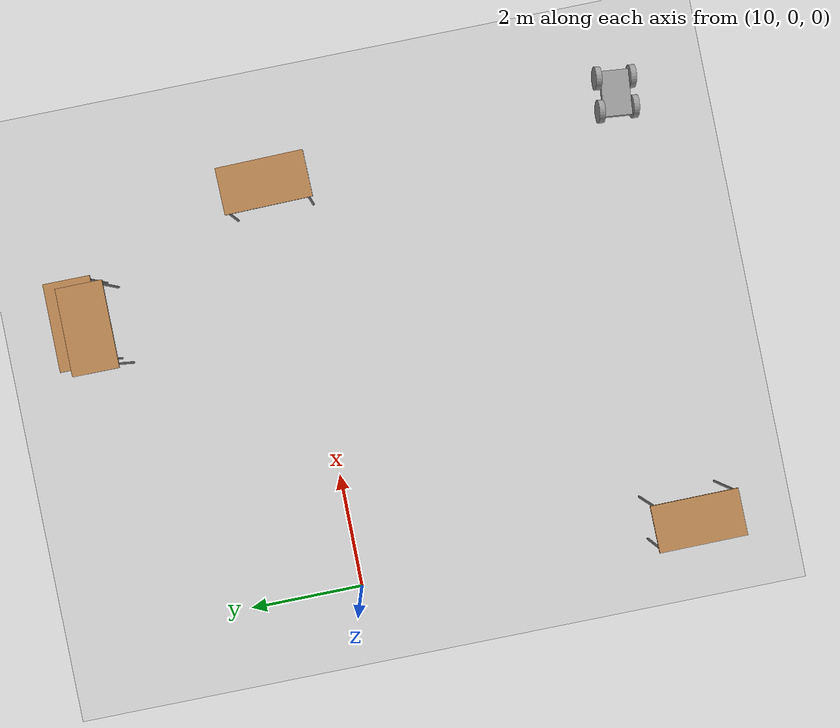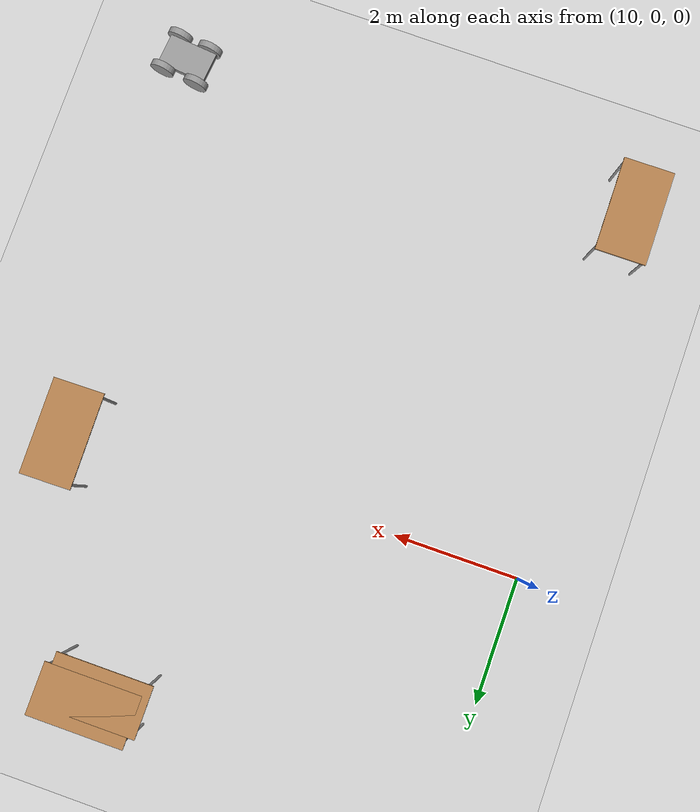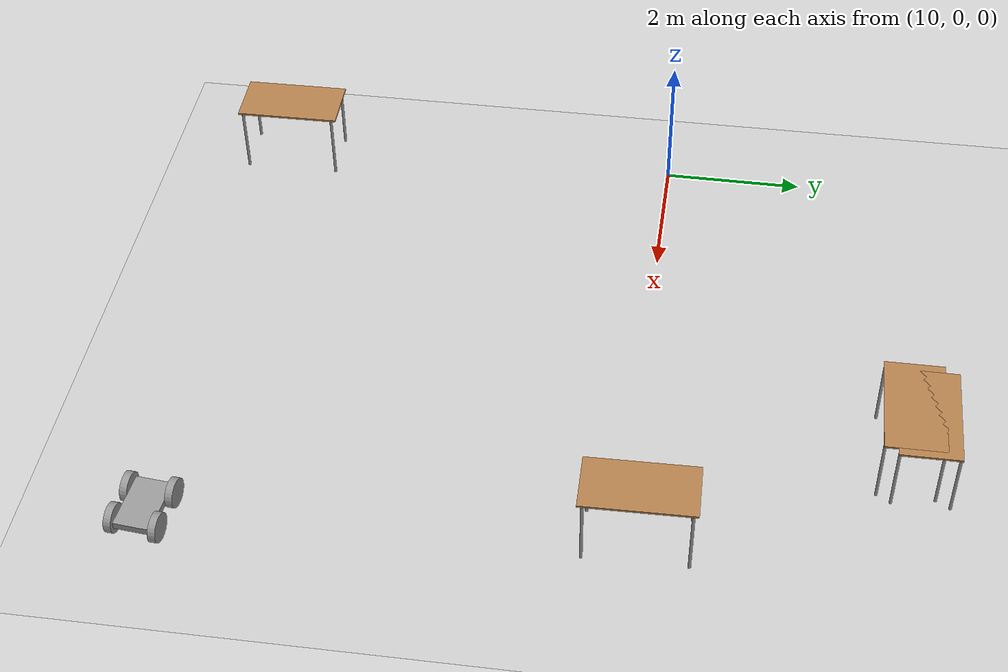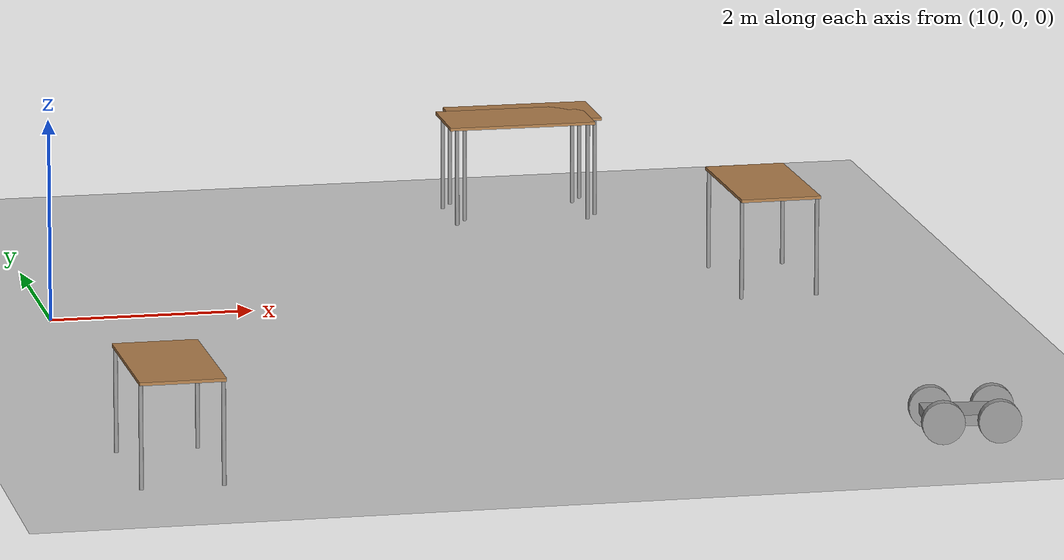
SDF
<sdf version="1.6">
 <world name="building">
  <model name="ground_plane">
   <static>1</static>
   <link name="link">
    <collision name="collision">
     <geometry><plane><normal>0 0 1</normal><size>100 100</size></plane></geometry>
     <surface><friction><ode><mu>100</mu><mu2>50</mu2></ode></friction></surface>
    </collision>
    <visual name="visual">
     <cast_shadows>0</cast_shadows>
     <geometry><plane><normal>0 0 1</normal><size>100 100</size></plane></geometry>
     <material>
      <script><uri>file://media/materials/scripts/gazebo.material</uri><name>Gazebo/Grey</name></script>
     </material>
    </visual>
   </link>
  </model>
  <model name="robot">
   <link name="link_0">
    <pose>-0.003 0 0 0 -0 0</pose>
    <inertial>
     <mass>1</mass>
     <inertia>
      <ixx>0.166667</ixx>
      <ixy>0</ixy>
      <ixz>0</ixz>
      <iyy>0.166667</iyy>
      <iyz>0</iyz>
      <izz>0.166667</izz>
     </inertia>
    </inertial>
    <visual name="visual">
     <geometry><box><size>0.8 0.5 0.1</size></box></geometry>
     <material>
      <lighting>1</lighting>
      <script><uri>file://media/materials/scripts/gazebo.material</uri><name>Gazebo/Grey</name></script>
      <shader type="pixel"><normal_map>__default__</normal_map></shader>
      <ambient>0.3 0.3 0.3 1</ambient>
      <diffuse>0.7 0.7 0.7 1</diffuse>
      <specular>0.01 0.01 0.01 1</specular>
      <emissive>0 0 0 1</emissive>
     </material>
    </visual>
    <collision name="collision">
     <geometry><box><size>0.8 0.5 0.1</size></box></geometry>
     <surface>
      <friction>
       <ode><mu>1</mu><mu2>1</mu2><fdir1>0 0 0</fdir1><slip1>0</slip1><slip2>0</slip2></ode>
       <torsional>
        <coefficient>1</coefficient>
        <patch_radius>0</patch_radius>
        <surface_radius>0</surface_radius>
        <use_patch_radius>1</use_patch_radius>
        <ode><slip>0</slip></ode>
       </torsional>
      </friction>
      <bounce><restitution_coefficient>0</restitution_coefficient><threshold>1e+06</threshold></bounce>
      <contact>
       <collide_without_contact>0</collide_without_contact>
       <collide_without_contact_bitmask>1</collide_without_contact_bitmask>
       <collide_bitmask>1</collide_bitmask>
       <ode>
        <soft_cfm>0</soft_cfm>
        <soft_erp>0.2</soft_erp>
        <kp>1e+13</kp>
        <kd>1</kd>
        <max_vel>0.01</max_vel>
        <min_depth>0</min_depth>
       </ode>
       <bullet>
        <split_impulse>1</split_impulse>
        <split_impulse_penetration_threshold>-0.01</split_impulse_penetration_threshold>
        <soft_cfm>0</soft_cfm>
        <soft_erp>0.2</soft_erp>
        <kp>1e+13</kp>
        <kd>1</kd>
       </bullet>
      </contact>
     </surface>
    </collision>
   </link>
   <link name="link_1">
    <pose>-0.260406 -0.300019 0 1.5707 -0 0</pose>
    <inertial>
     <mass>1</mass>
     <inertia><ixx>0.145833</ixx><ixy>0</ixy><ixz>0</ixz><iyy>0.145833</iyy><iyz>0</iyz><izz>0.125</izz></inertia>
    </inertial>
    <visual name="visual">
     <geometry><cylinder><radius>0.2</radius><length>0.1</length></cylinder></geometry>
     <material>
      <lighting>1</lighting>
      <script><uri>file://media/materials/scripts/gazebo.material</uri><name>Gazebo/Grey</name></script>
      <shader type="pixel"><normal_map>__default__</normal_map></shader>
      <ambient>0.3 0.3 0.3 1</ambient>
      <diffuse>0.7 0.7 0.7 1</diffuse>
      <specular>0.01 0.01 0.01 1</specular>
      <emissive>0 0 0 1</emissive>
     </material>
    </visual>
    <collision name="collision">
     <geometry><cylinder><radius>0.2</radius><length>0.1</length></cylinder></geometry>
     <surface>
      <friction>
       <ode><mu>1</mu><mu2>1</mu2><fdir1>0 0 0</fdir1><slip1>0</slip1><slip2>0</slip2></ode>
       <torsional>
        <coefficient>1</coefficient>
        <patch_radius>0</patch_radius>
        <surface_radius>0</surface_radius>
        <use_patch_radius>1</use_patch_radius>
        <ode><slip>0</slip></ode>
       </torsional>
      </friction>
      <bounce><restitution_coefficient>0</restitution_coefficient><threshold>1e+06</threshold></bounce>
      <contact>
       <collide_without_contact>0</collide_without_contact>
       <collide_without_contact_bitmask>1</collide_without_contact_bitmask>
       <collide_bitmask>1</collide_bitmask>
       <ode>
        <soft_cfm>0</soft_cfm>
        <soft_erp>0.2</soft_erp>
        <kp>1e+13</kp>
        <kd>1</kd>
        <max_vel>0.01</max_vel>
        <min_depth>0</min_depth>
       </ode>
       <bullet>
        <split_impulse>1</split_impulse>
        <split_impulse_penetration_threshold>-0.01</split_impulse_penetration_threshold>
        <soft_cfm>0</soft_cfm>
        <soft_erp>0.2</soft_erp>
        <kp>1e+13</kp>
        <kd>1</kd>
       </bullet>
      </contact>
     </surface>
    </collision>
   </link>
   <link name="link_1_clone">
    <pose>0.267747 -0.300019 0 1.5707 -0 0</pose>
    <inertial>
     <mass>1</mass>
     <inertia><ixx>0.145833</ixx><ixy>0</ixy><ixz>0</ixz><iyy>0.145833</iyy><iyz>0</iyz><izz>0.125</izz></inertia>
    </inertial>
    <visual name="visual">
     <geometry><cylinder><radius>0.2</radius><length>0.1</length></cylinder></geometry>
     <material>
      <lighting>1</lighting>
      <script><uri>file://media/materials/scripts/gazebo.material</uri><name>Gazebo/Grey</name></script>
      <shader type="pixel"><normal_map>__default__</normal_map></shader>
      <ambient>0.3 0.3 0.3 1</ambient>
      <diffuse>0.7 0.7 0.7 1</diffuse>
      <specular>0.01 0.01 0.01 1</specular>
      <emissive>0 0 0 1</emissive>
     </material>
    </visual>
    <collision name="collision">
     <geometry><cylinder><radius>0.2</radius><length>0.1</length></cylinder></geometry>
     <surface>
      <friction>
       <ode><mu>1</mu><mu2>1</mu2><fdir1>0 0 0</fdir1><slip1>0</slip1><slip2>0</slip2></ode>
       <torsional>
        <coefficient>1</coefficient>
        <patch_radius>0</patch_radius>
        <surface_radius>0</surface_radius>
        <use_patch_radius>1</use_patch_radius>
        <ode><slip>0</slip></ode>
       </torsional>
      </friction>
      <bounce><restitution_coefficient>0</restitution_coefficient><threshold>1e+06</threshold></bounce>
      <contact>
       <collide_without_contact>0</collide_without_contact>
       <collide_without_contact_bitmask>1</collide_without_contact_bitmask>
       <collide_bitmask>1</collide_bitmask>
       <ode>
        <soft_cfm>0</soft_cfm>
        <soft_erp>0.2</soft_erp>
        <kp>1e+13</kp>
        <kd>1</kd>
        <max_vel>0.01</max_vel>
        <min_depth>0</min_depth>
       </ode>
       <bullet>
        <split_impulse>1</split_impulse>
        <split_impulse_penetration_threshold>-0.01</split_impulse_penetration_threshold>
        <soft_cfm>0</soft_cfm>
        <soft_erp>0.2</soft_erp>
        <kp>1e+13</kp>
        <kd>1</kd>
       </bullet>
      </contact>
     </surface>
    </collision>
   </link>
   <link name="link_1_clone_0">
    <pose>-0.293693 0.300019 0 1.5707 -0 0</pose>
    <inertial>
     <mass>1</mass>
     <inertia><ixx>0.145833</ixx><ixy>0</ixy><ixz>0</ixz><iyy>0.145833</iyy><iyz>0</iyz><izz>0.125</izz></inertia>
    </inertial>
    <visual name="visual">
     <geometry><cylinder><radius>0.2</radius><length>0.1</length></cylinder></geometry>
     <material>
      <lighting>1</lighting>
      <script><uri>file://media/materials/scripts/gazebo.material</uri><name>Gazebo/Grey</name></script>
      <shader type="pixel"><normal_map>__default__</normal_map></shader>
      <ambient>0.3 0.3 0.3 1</ambient>
      <diffuse>0.7 0.7 0.7 1</diffuse>
      <specular>0.01 0.01 0.01 1</specular>
      <emissive>0 0 0 1</emissive>
     </material>
    </visual>
    <collision name="collision">
     <geometry><cylinder><radius>0.2</radius><length>0.1</length></cylinder></geometry>
     <surface>
      <friction>
       <ode><mu>1</mu><mu2>1</mu2><fdir1>0 0 0</fdir1><slip1>0</slip1><slip2>0</slip2></ode>
       <torsional>
        <coefficient>1</coefficient>
        <patch_radius>0</patch_radius>
        <surface_radius>0</surface_radius>
        <use_patch_radius>1</use_patch_radius>
        <ode><slip>0</slip></ode>
       </torsional>
      </friction>
      <bounce><restitution_coefficient>0</restitution_coefficient><threshold>1e+06</threshold></bounce>
      <contact>
       <collide_without_contact>0</collide_without_contact>
       <collide_without_contact_bitmask>1</collide_without_contact_bitmask>
       <collide_bitmask>1</collide_bitmask>
       <ode>
        <soft_cfm>0</soft_cfm>
        <soft_erp>0.2</soft_erp>
        <kp>1e+13</kp>
        <kd>1</kd>
        <max_vel>0.01</max_vel>
        <min_depth>0</min_depth>
       </ode>
       <bullet>
        <split_impulse>1</split_impulse>
        <split_impulse_penetration_threshold>-0.01</split_impulse_penetration_threshold>
        <soft_cfm>0</soft_cfm>
        <soft_erp>0.2</soft_erp>
        <kp>1e+13</kp>
        <kd>1</kd>
       </bullet>
      </contact>
     </surface>
    </collision>
   </link>
   <link name="link_1_clone_1">
    <pose>0.289353 0.300019 0 1.5707 -0 0</pose>
    <inertial>
     <mass>1</mass>
     <inertia><ixx>0.145833</ixx><ixy>0</ixy><ixz>0</ixz><iyy>0.145833</iyy><iyz>0</iyz><izz>0.125</izz></inertia>
    </inertial>
    <visual name="visual">
     <geometry><cylinder><radius>0.2</radius><length>0.1</length></cylinder></geometry>
     <material>
      <lighting>1</lighting>
      <script><uri>file://media/materials/scripts/gazebo.material</uri><name>Gazebo/Grey</name></script>
      <shader type="pixel"><normal_map>__default__</normal_map></shader>
      <ambient>0.3 0.3 0.3 1</ambient>
      <diffuse>0.7 0.7 0.7 1</diffuse>
      <specular>0.01 0.01 0.01 1</specular>
      <emissive>0 0 0 1</emissive>
     </material>
    </visual>
    <collision name="collision">
     <geometry><cylinder><radius>0.2</radius><length>0.1</length></cylinder></geometry>
     <surface>
      <friction>
       <ode><mu>1</mu><mu2>1</mu2><fdir1>0 0 0</fdir1><slip1>0</slip1><slip2>0</slip2></ode>
       <torsional>
        <coefficient>1</coefficient>
        <patch_radius>0</patch_radius>
        <surface_radius>0</surface_radius>
        <use_patch_radius>1</use_patch_radius>
        <ode><slip>0</slip></ode>
       </torsional>
      </friction>
      <bounce><restitution_coefficient>0</restitution_coefficient><threshold>1e+06</threshold></bounce>
      <contact>
       <collide_without_contact>0</collide_without_contact>
       <collide_without_contact_bitmask>1</collide_without_contact_bitmask>
       <collide_bitmask>1</collide_bitmask>
       <ode>
        <soft_cfm>0</soft_cfm>
        <soft_erp>0.2</soft_erp>
        <kp>1e+13</kp>
        <kd>1</kd>
        <max_vel>0.01</max_vel>
        <min_depth>0</min_depth>
       </ode>
       <bullet>
        <split_impulse>1</split_impulse>
        <split_impulse_penetration_threshold>-0.01</split_impulse_penetration_threshold>
        <soft_cfm>0</soft_cfm>
        <soft_erp>0.2</soft_erp>
        <kp>1e+13</kp>
        <kd>1</kd>
       </bullet>
      </contact>
     </surface>
    </collision>
   </link>
   <joint name="link_0_JOINT_0" type="revolute">
    <parent>link_0</parent>
    <child>link_1_clone_0</child>
    <axis>
     <xyz>0 0 1</xyz>
     <use_parent_model_frame>0</use_parent_model_frame>
     <limit>
      <lower>-1.79769e+308</lower>
      <upper>1.79769e+308</upper>
      <effort>-1</effort>
      <velocity>-1</velocity>
     </limit>
     <dynamics>
      <spring_reference>0</spring_reference>
      <spring_stiffness>0</spring_stiffness>
      <damping>0</damping>
     </dynamics>
    </axis>
    <physics>
     <ode><limit><cfm>0</cfm><erp>0.2</erp></limit><suspension><cfm>0</cfm><erp>0.2</erp></suspension></ode>
    </physics>
   </joint>
   <joint name="link_0_JOINT_1" type="revolute">
    <parent>link_0</parent>
    <child>link_1</child>
    <axis>
     <xyz>0 0 1</xyz>
     <use_parent_model_frame>0</use_parent_model_frame>
     <limit>
      <lower>-1.79769e+308</lower>
      <upper>1.79769e+308</upper>
      <effort>-1</effort>
      <velocity>-1</velocity>
     </limit>
     <dynamics>
      <spring_reference>0</spring_reference>
      <spring_stiffness>0</spring_stiffness>
      <damping>0</damping>
     </dynamics>
    </axis>
    <physics>
     <ode><limit><cfm>0</cfm><erp>0.2</erp></limit><suspension><cfm>0</cfm><erp>0.2</erp></suspension></ode>
    </physics>
   </joint>
   <joint name="link_0_JOINT_2" type="revolute">
    <parent>link_0</parent>
    <child>link_1_clone_1</child>
    <axis>
     <xyz>0 0 1</xyz>
     <use_parent_model_frame>0</use_parent_model_frame>
     <limit>
      <lower>-1.79769e+308</lower>
      <upper>1.79769e+308</upper>
      <effort>-1</effort>
      <velocity>-1</velocity>
     </limit>
     <dynamics>
      <spring_reference>0</spring_reference>
      <spring_stiffness>0</spring_stiffness>
      <damping>0</damping>
     </dynamics>
    </axis>
    <physics>
     <ode><limit><cfm>0</cfm><erp>0.2</erp></limit><suspension><cfm>0</cfm><erp>0.2</erp></suspension></ode>
    </physics>
   </joint>
   <joint name="link_0_JOINT_3" type="revolute">
    <parent>link_0</parent>
    <child>link_1_clone</child>
    <axis>
     <xyz>0 0 1</xyz>
     <use_parent_model_frame>0</use_parent_model_frame>
     <limit>
      <lower>-1.79769e+308</lower>
      <upper>1.79769e+308</upper>
      <effort>-1</effort>
      <velocity>-1</velocity>
     </limit>
     <dynamics>
      <spring_reference>0</spring_reference>
      <spring_stiffness>0</spring_stiffness>
      <damping>0</damping>
     </dynamics>
    </axis>
    <physics>
     <ode><limit><cfm>0</cfm><erp>0.2</erp></limit><suspension><cfm>0</cfm><erp>0.2</erp></suspension></ode>
    </physics>
   </joint>
   <static>0</static>
   <pose>17.6332 -6.06875 0.2 -1e-06 1.6e-05 -0.096623</pose>
  </model>
  <model name="table_0">
   <static>1</static>
   <link name="link">
    <collision name="surface">
     <pose>0 0 1 0 -0 0</pose>
     <geometry><box><size>1.5 0.8 0.03</size></box></geometry>
     <surface><friction><ode><mu>0.6</mu><mu2>0.6</mu2></ode></friction></surface>
    </collision>
    <visual name="visual1">
     <pose>0 0 1 0 -0 0</pose>
     <geometry><box><size>1.5 0.8 0.03</size></box></geometry>
     <material>
      <script><uri>file://media/materials/scripts/gazebo.material</uri><name>Gazebo/Wood</name></script>
     </material>
    </visual>
    <collision name="front_left_leg">
     <pose>0.68 0.38 0.5 0 -0 0</pose>
     <geometry><cylinder><radius>0.02</radius><length>1</length></cylinder></geometry>
    </collision>
    <visual name="front_left_leg">
     <pose>0.68 0.38 0.5 0 -0 0</pose>
     <geometry><cylinder><radius>0.02</radius><length>1</length></cylinder></geometry>
     <material>
      <script><uri>file://media/materials/scripts/gazebo.material</uri><name>Gazebo/Grey</name></script>
     </material>
    </visual>
    <collision name="front_right_leg">
     <pose>0.68 -0.38 0.5 0 -0 0</pose>
     <geometry><cylinder><radius>0.02</radius><length>1</length></cylinder></geometry>
    </collision>
    <visual name="front_right_leg">
     <pose>0.68 -0.38 0.5 0 -0 0</pose>
     <geometry><cylinder><radius>0.02</radius><length>1</length></cylinder></geometry>
     <material>
      <script><uri>file://media/materials/scripts/gazebo.material</uri><name>Gazebo/Grey</name></script>
     </material>
    </visual>
    <collision name="back_right_leg">
     <pose>-0.68 -0.38 0.5 0 -0 0</pose>
     <geometry><cylinder><radius>0.02</radius><length>1</length></cylinder></geometry>
    </collision>
    <visual name="back_right_leg">
     <pose>-0.68 -0.38 0.5 0 -0 0</pose>
     <geometry><cylinder><radius>0.02</radius><length>1</length></cylinder></geometry>
     <material>
      <script><uri>file://media/materials/scripts/gazebo.material</uri><name>Gazebo/Grey</name></script>
     </material>
    </visual>
    <collision name="back_left_leg">
     <pose>-0.68 0.38 0.5 0 -0 0</pose>
     <geometry><cylinder><radius>0.02</radius><length>1</length></cylinder></geometry>
    </collision>
    <visual name="back_left_leg">
     <pose>-0.68 0.38 0.5 0 -0 0</pose>
     <geometry><cylinder><radius>0.02</radius><length>1</length></cylinder></geometry>
     <material>
      <script><uri>file://media/materials/scripts/gazebo.material</uri><name>Gazebo/Grey</name></script>
     </material>
    </visual>
   </link>
   <pose>17.169 0.198862 0 0 -0 1.58713</pose>
  </model>
  <model name="table_2">
   <static>1</static>
   <link name="link">
    <collision name="surface">
     <pose>0 0 1 0 -0 0</pose>
     <geometry><box><size>1.5 0.8 0.03</size></box></geometry>
     <surface><friction><ode><mu>0.6</mu><mu2>0.6</mu2></ode></friction></surface>
    </collision>
    <visual name="visual1">
     <pose>0 0 1 0 -0 0</pose>
     <geometry><box><size>1.5 0.8 0.03</size></box></geometry>
     <material>
      <script><uri>file://media/materials/scripts/gazebo.material</uri><name>Gazebo/Wood</name></script>
     </material>
    </visual>
    <collision name="front_left_leg">
     <pose>0.68 0.38 0.5 0 -0 0</pose>
     <geometry><cylinder><radius>0.02</radius><length>1</length></cylinder></geometry>
    </collision>
    <visual name="front_left_leg">
     <pose>0.68 0.38 0.5 0 -0 0</pose>
     <geometry><cylinder><radius>0.02</radius><length>1</length></cylinder></geometry>
     <material>
      <script><uri>file://media/materials/scripts/gazebo.material</uri><name>Gazebo/Grey</name></script>
     </material>
    </visual>
    <collision name="front_right_leg">
     <pose>0.68 -0.38 0.5 0 -0 0</pose>
     <geometry><cylinder><radius>0.02</radius><length>1</length></cylinder></geometry>
    </collision>
    <visual name="front_right_leg">
     <pose>0.68 -0.38 0.5 0 -0 0</pose>
     <geometry><cylinder><radius>0.02</radius><length>1</length></cylinder></geometry>
     <material>
      <script><uri>file://media/materials/scripts/gazebo.material</uri><name>Gazebo/Grey</name></script>
     </material>
    </visual>
    <collision name="back_right_leg">
     <pose>-0.68 -0.38 0.5 0 -0 0</pose>
     <geometry><cylinder><radius>0.02</radius><length>1</length></cylinder></geometry>
    </collision>
    <visual name="back_right_leg">
     <pose>-0.68 -0.38 0.5 0 -0 0</pose>
     <geometry><cylinder><radius>0.02</radius><length>1</length></cylinder></geometry>
     <material>
      <script><uri>file://media/materials/scripts/gazebo.material</uri><name>Gazebo/Grey</name></script>
     </material>
    </visual>
    <collision name="back_left_leg">
     <pose>-0.68 0.38 0.5 0 -0 0</pose>
     <geometry><cylinder><radius>0.02</radius><length>1</length></cylinder></geometry>
    </collision>
    <visual name="back_left_leg">
     <pose>-0.68 0.38 0.5 0 -0 0</pose>
     <geometry><cylinder><radius>0.02</radius><length>1</length></cylinder></geometry>
     <material>
      <script><uri>file://media/materials/scripts/gazebo.material</uri><name>Gazebo/Grey</name></script>
     </material>
    </visual>
   </link>
   <pose>10.2025 -5.80418 0 0 -0 1.57846</pose>
  </model>
  <model name="table">
   <static>1</static>
   <link name="link">
    <collision name="surface">
     <pose>0 0 1 0 -0 0</pose>
     <geometry><box><size>1.5 0.8 0.03</size></box></geometry>
     <surface><friction><ode><mu>0.6</mu><mu2>0.6</mu2></ode></friction></surface>
    </collision>
    <visual name="visual1">
     <pose>0 0 1 0 -0 0</pose>
     <geometry><box><size>1.5 0.8 0.03</size></box></geometry>
     <material>
      <script><uri>file://media/materials/scripts/gazebo.material</uri><name>Gazebo/Wood</name></script>
     </material>
    </visual>
    <collision name="front_left_leg">
     <pose>0.68 0.38 0.5 0 -0 0</pose>
     <geometry><cylinder><radius>0.02</radius><length>1</length></cylinder></geometry>
    </collision>
    <visual name="front_left_leg">
     <pose>0.68 0.38 0.5 0 -0 0</pose>
     <geometry><cylinder><radius>0.02</radius><length>1</length></cylinder></geometry>
     <material>
      <script><uri>file://media/materials/scripts/gazebo.material</uri><name>Gazebo/Grey</name></script>
     </material>
    </visual>
    <collision name="front_right_leg">
     <pose>0.68 -0.38 0.5 0 -0 0</pose>
     <geometry><cylinder><radius>0.02</radius><length>1</length></cylinder></geometry>
    </collision>
    <visual name="front_right_leg">
     <pose>0.68 -0.38 0.5 0 -0 0</pose>
     <geometry><cylinder><radius>0.02</radius><length>1</length></cylinder></geometry>
     <material>
      <script><uri>file://media/materials/scripts/gazebo.material</uri><name>Gazebo/Grey</name></script>
     </material>
    </visual>
    <collision name="back_right_leg">
     <pose>-0.68 -0.38 0.5 0 -0 0</pose>
     <geometry><cylinder><radius>0.02</radius><length>1</length></cylinder></geometry>
    </collision>
    <visual name="back_right_leg">
     <pose>-0.68 -0.38 0.5 0 -0 0</pose>
     <geometry><cylinder><radius>0.02</radius><length>1</length></cylinder></geometry>
     <material>
      <script><uri>file://media/materials/scripts/gazebo.material</uri><name>Gazebo/Grey</name></script>
     </material>
    </visual>
    <collision name="back_left_leg">
     <pose>-0.68 0.38 0.5 0 -0 0</pose>
     <geometry><cylinder><radius>0.02</radius><length>1</length></cylinder></geometry>
    </collision>
    <visual name="back_left_leg">
     <pose>-0.68 0.38 0.5 0 -0 0</pose>
     <geometry><cylinder><radius>0.02</radius><length>1</length></cylinder></geometry>
     <material>
      <script><uri>file://media/materials/scripts/gazebo.material</uri><name>Gazebo/Grey</name></script>
     </material>
    </visual>
   </link>
   <pose>15.362 3.56808 0 0 -0 0</pose>
  </model>
  <model name="table_3">
   <static>1</static>
   <link name="link">
    <collision name="surface">
     <pose>0 0 1 0 -0 0</pose>
     <geometry><box><size>1.5 0.8 0.03</size></box></geometry>
     <surface><friction><ode><mu>0.6</mu><mu2>0.6</mu2></ode></friction></surface>
    </collision>
    <visual name="visual1">
     <pose>0 0 1 0 -0 0</pose>
     <geometry><box><size>1.5 0.8 0.03</size></box></geometry>
     <material>
      <script><uri>file://media/materials/scripts/gazebo.material</uri><name>Gazebo/Wood</name></script>
     </material>
    </visual>
    <collision name="front_left_leg">
     <pose>0.68 0.38 0.5 0 -0 0</pose>
     <geometry><cylinder><radius>0.02</radius><length>1</length></cylinder></geometry>
    </collision>
    <visual name="front_left_leg">
     <pose>0.68 0.38 0.5 0 -0 0</pose>
     <geometry><cylinder><radius>0.02</radius><length>1</length></cylinder></geometry>
     <material>
      <script><uri>file://media/materials/scripts/gazebo.material</uri><name>Gazebo/Grey</name></script>
     </material>
    </visual>
    <collision name="front_right_leg">
     <pose>0.68 -0.38 0.5 0 -0 0</pose>
     <geometry><cylinder><radius>0.02</radius><length>1</length></cylinder></geometry>
    </collision>
    <visual name="front_right_leg">
     <pose>0.68 -0.38 0.5 0 -0 0</pose>
     <geometry><cylinder><radius>0.02</radius><length>1</length></cylinder></geometry>
     <material>
      <script><uri>file://media/materials/scripts/gazebo.material</uri><name>Gazebo/Grey</name></script>
     </material>
    </visual>
    <collision name="back_right_leg">
     <pose>-0.68 -0.38 0.5 0 -0 0</pose>
     <geometry><cylinder><radius>0.02</radius><length>1</length></cylinder></geometry>
    </collision>
    <visual name="back_right_leg">
     <pose>-0.68 -0.38 0.5 0 -0 0</pose>
     <geometry><cylinder><radius>0.02</radius><length>1</length></cylinder></geometry>
     <material>
      <script><uri>file://media/materials/scripts/gazebo.material</uri><name>Gazebo/Grey</name></script>
     </material>
    </visual>
    <collision name="back_left_leg">
     <pose>-0.68 0.38 0.5 0 -0 0</pose>
     <geometry><cylinder><radius>0.02</radius><length>1</length></cylinder></geometry>
    </collision>
    <visual name="back_left_leg">
     <pose>-0.68 0.38 0.5 0 -0 0</pose>
     <geometry><cylinder><radius>0.02</radius><length>1</length></cylinder></geometry>
     <material>
      <script><uri>file://media/materials/scripts/gazebo.material</uri><name>Gazebo/Grey</name></script>
     </material>
    </visual>
   </link>
   <pose>15.4742 3.75327 0 0 -0 0</pose>
  </model>
 </world>
</sdf>
